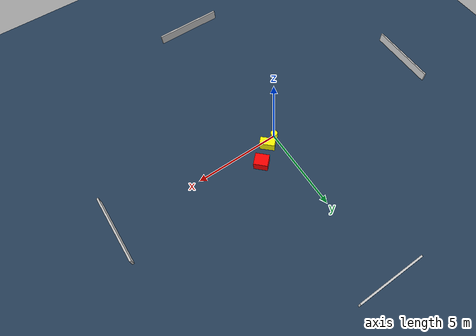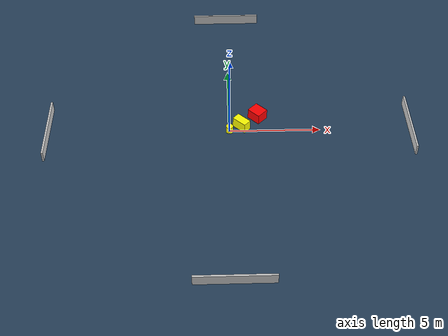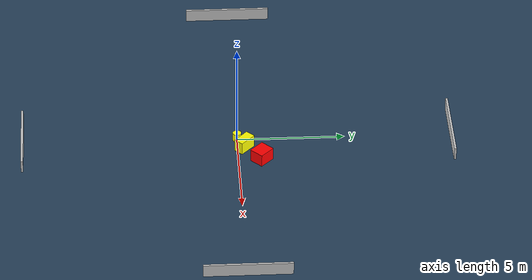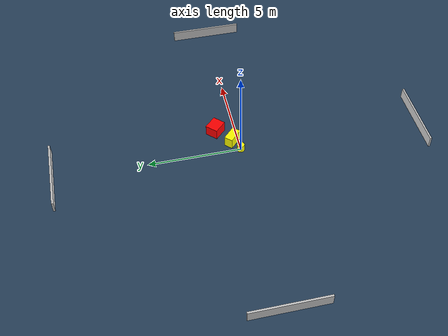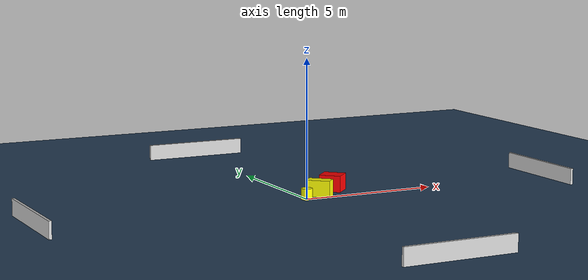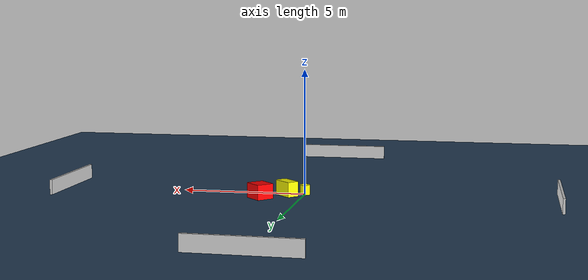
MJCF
<?xml version="1.0" ?>
<mujoco model="generated_environment">
  <option timestep="0.01" integrator="RK4" cone="elliptic"/>
  <default>
    <geom density="1"/>
  </default>
  <asset>
    <texture builtin="gradient" height="3072" name="skybox" rgb1="0.3 0.5 0.7" rgb2="0 0 0" type="skybox" width="512"/>
    <texture builtin="checker" height="300" name="groundplane" rgb1="0.2 0.3 0.4" rgb2="0.1 0.2 0.3" type="2d" width="300"/>
    <material name="groundplane" reflectance="0.2" texrepeat="5 5" texture="groundplane"/>
  </asset>
  <worldbody>
    <light dir="0 0 -1" directional="true" pos="0 0 1.5"/>
    <geom condim="3" friction="0.5 0.005 0.001" material="groundplane" name="floor" pos="0 0 0" size="0 0 0.05" type="plane"/>
    <body name="walls">
      <geom name="wall_1" condim="4" pos="-10.0 0.0 0.3" rgba="0.800000011920929 0.800000011920929 0.800000011920929 1.0" size="0.05 2.0 0.3" type="box"/>
      <geom name="wall_2" condim="4" pos="10.0 0.0 0.3" rgba="0.800000011920929 0.800000011920929 0.800000011920929 1.0" size="0.05 2.0 0.3" type="box"/>
      <geom name="wall_3" condim="4" pos="0.0 -10.0 0.3" rgba="0.800000011920929 0.800000011920929 0.800000011920929 1.0" size="2.0 0.05 0.3" type="box"/>
      <geom name="wall_4" condim="4" pos="0.0 10.0 0.3" rgba="0.800000011920929 0.800000011920929 0.800000011920929 1.0" size="2.0 0.05 0.3" type="box"/>
    </body>
    <body name="robot">
      <joint name="joint_x" type="slide" pos="0 0 0" axis="1 0 0"/>
      <joint name="joint_y" type="slide" pos="0 0 0" axis="0 1 0"/>
      <geom name="robot" type="cylinder" pos="0.0 0.0 0.2" size="0.2 0.2 0.0" mass="5.0" friction="1.0 0.005 0.0001" condim="4" rgba="1.0 1.0 0.0 1.0"/>
    </body>
    <body name="obstacle_1_movable">
      <geom name="obstacle_1_movable" condim="4" pos="0.6705063513591092 0.31041022035503296 0.3" euler="0 0 316.6532156165397" friction="0.0 0.005 0.001" rgba="1.0 1.0 0.0 1.0" size="0.4331300924086746 0.2344813081836019 0.3" type="box" mass="0.1"/>
      <joint type="free"/>
    </body>
    <body name="obstacle_2_static">
      <geom name="obstacle_2_static" condim="4" pos="1.5902062484843646 1.068821503912175 0.3" euler="0 0 225.3629776468101" friction="0.0 0.005 0.001" rgba="1.0 0.0 0.0 1.0" size="0.3515581714743925 0.39927888570145253 0.3" type="box"/>
    </body>
  </worldbody>
  <actuator>
    <motor name="actuator_x" joint="joint_x" gear="1" ctrlrange="-1 1"/>
    <motor name="actuator_y" joint="joint_y" gear="1" ctrlrange="-1 1"/>
  </actuator>
</mujoco>
